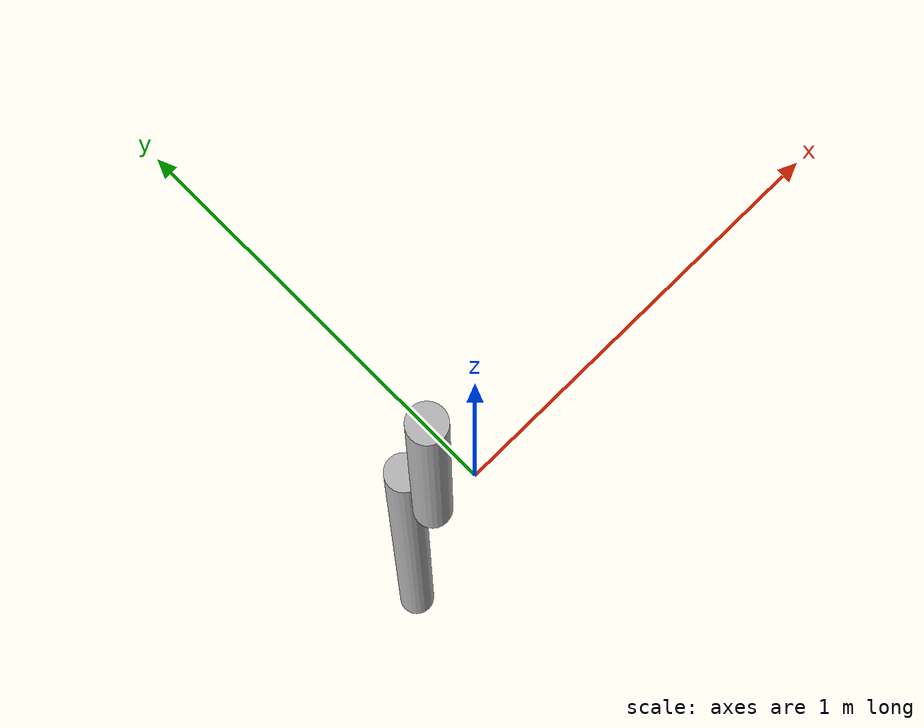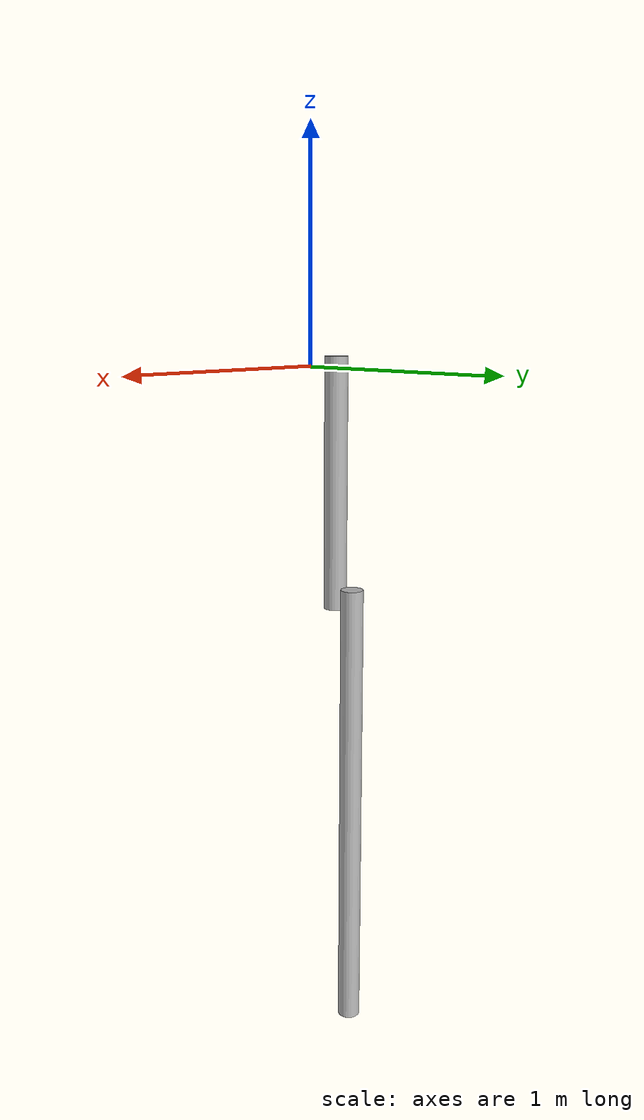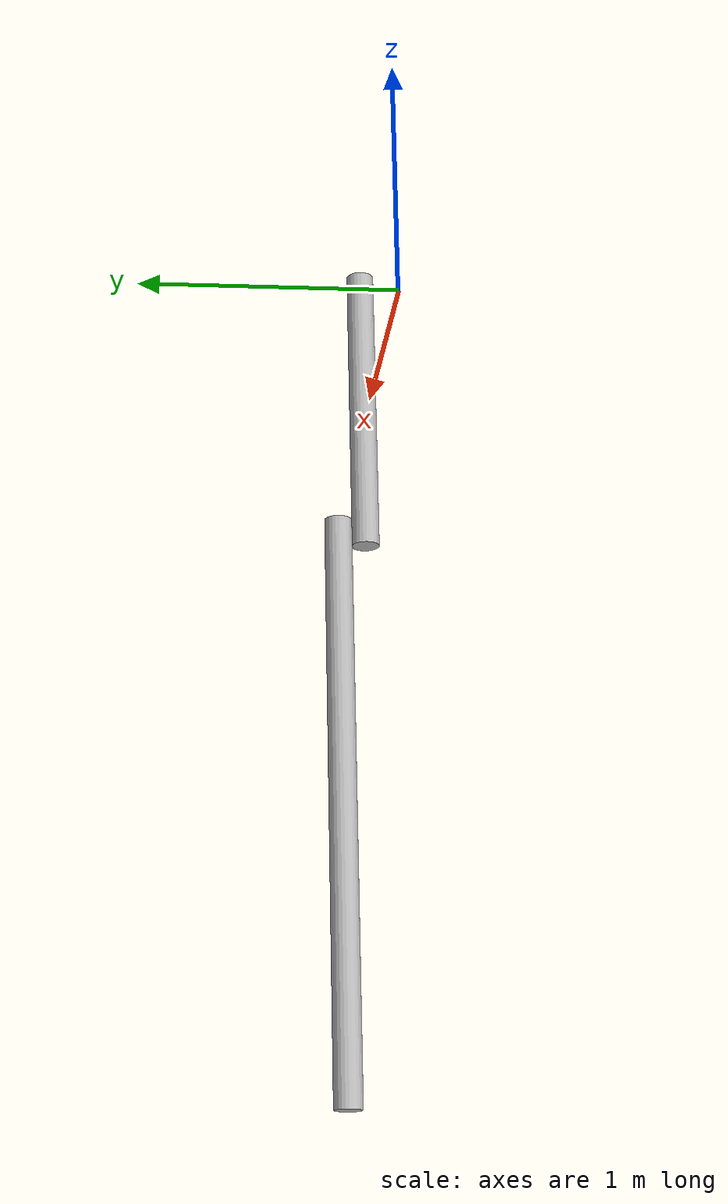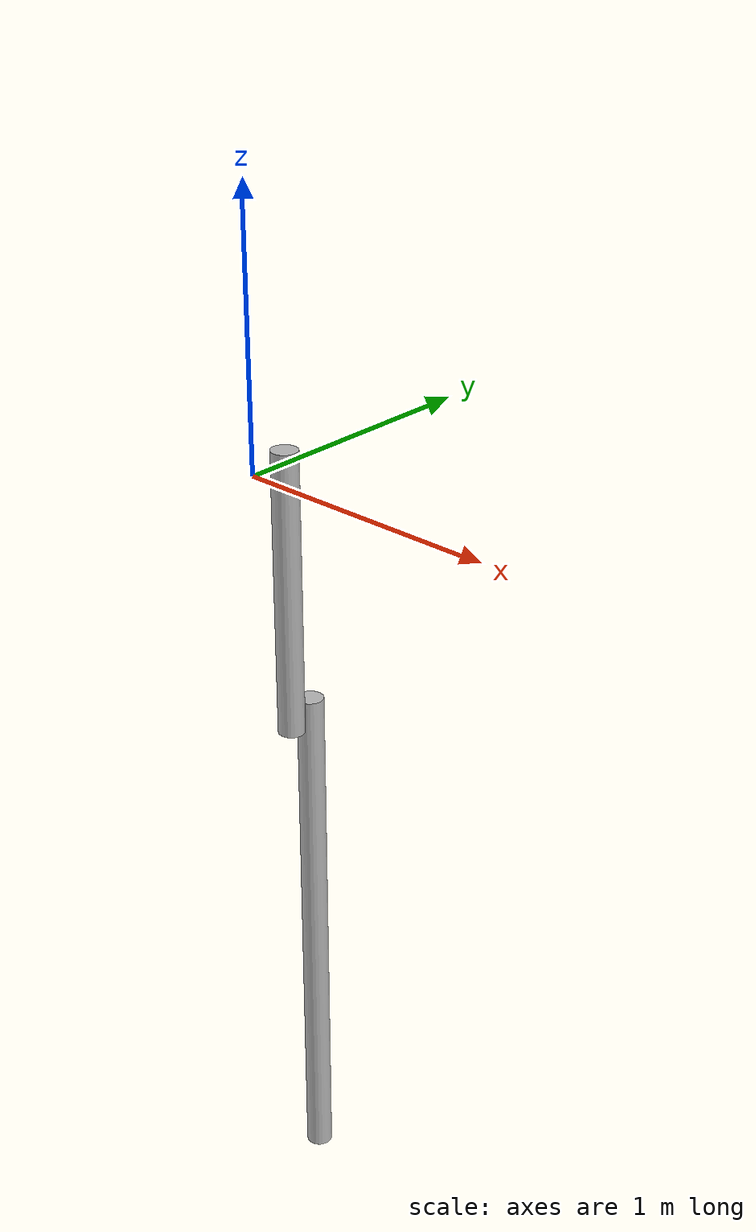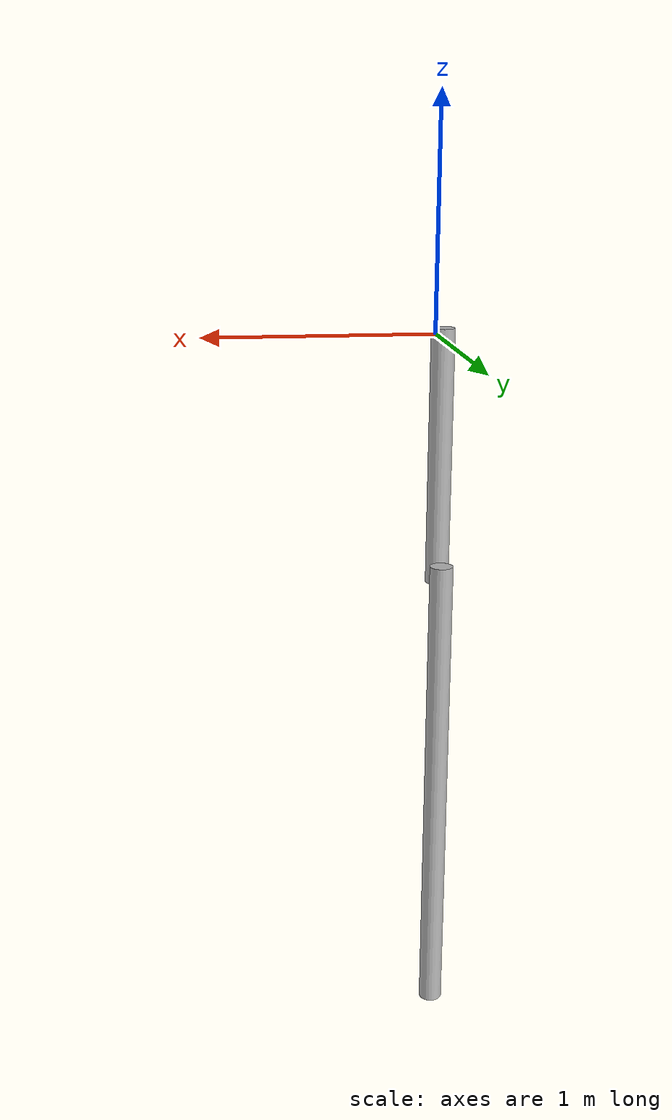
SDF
<sdf version='1.6'>
  <model name='Acrobot'>
    <link name='upper_link'>
      <pose>0 0.15 0 0 0 0</pose>
      <inertial>
        <pose>0 0 -0.5 0 0 0</pose>
        <mass>1</mass>
        <inertia>
          <ixx>1</ixx>
          <ixy>0</ixy>
          <ixz>0</ixz>
          <iyy>0.083</iyy>
          <iyz>0</iyz>
          <izz>1</izz>
        </inertia>
      </inertial>
      <visual name='upper_link_visual'>
        <pose>0 0 -0.5 0 0 0</pose>
        <geometry>
          <cylinder>
            <length>1.1</length>
            <radius>0.05</radius>
          </cylinder>
        </geometry>
      </visual>
    </link>
    <joint name='shoulder' type='revolute'>
      <child>upper_link</child>
      <parent>world</parent>
      <axis>
        <xyz>0 1 0</xyz>
        <limit>
          <!-- Drake parses a zero effort joint as an un-actuated joint. -->
          <effort>0</effort>
        </limit>
        <dynamics>
          <damping>0.1</damping>
        </dynamics>
        <use_parent_model_frame>1</use_parent_model_frame>
      </axis>
    </joint>
    <link name='lower_link'>
      <pose>0 0.25 -1 0 0 0</pose>
      <inertial>
        <pose>0 0 -1 0 0 0</pose>
        <mass>1</mass>
        <inertia>
          <ixx>1</ixx>
          <ixy>0</ixy>
          <ixz>0</ixz>
          <iyy>0.33</iyy>
          <iyz>0</iyz>
          <izz>1</izz>
        </inertia>
      </inertial>
      <visual name='lower_link_visual'>
        <pose>0 0 -1 0 0 0</pose>
        <geometry>
          <cylinder>
            <length>2.1</length>
            <radius>0.05</radius>
          </cylinder>
        </geometry>
      </visual>
    </link>
    <joint name='elbow' type='revolute'>
      <parent>upper_link</parent>
      <child>lower_link</child>
      <pose>0 0 -1 0 0 0</pose>
      <axis>
        <xyz>0 1 0</xyz>
        <limit>
          <!-- No limit provided. sdformat defaults to -1, which we parse as
               an actuated joint. -->
        </limit>
        <dynamics>
          <damping>0.1</damping>
        </dynamics>
        <use_parent_model_frame>1</use_parent_model_frame>
      </axis>
    </joint>
  </model>
</sdf>
